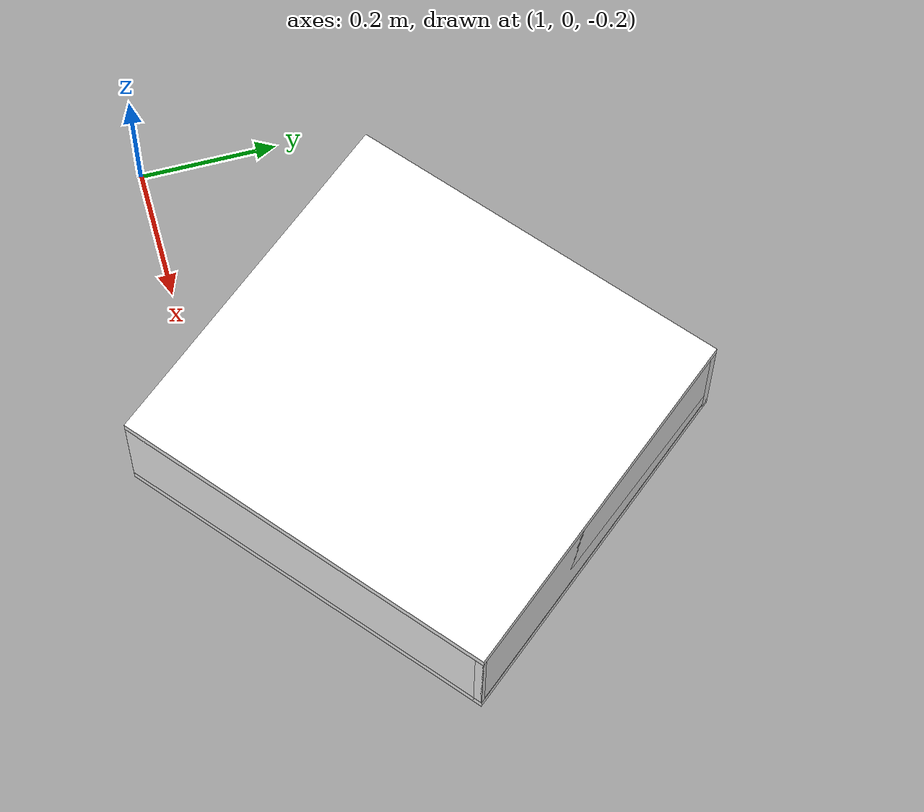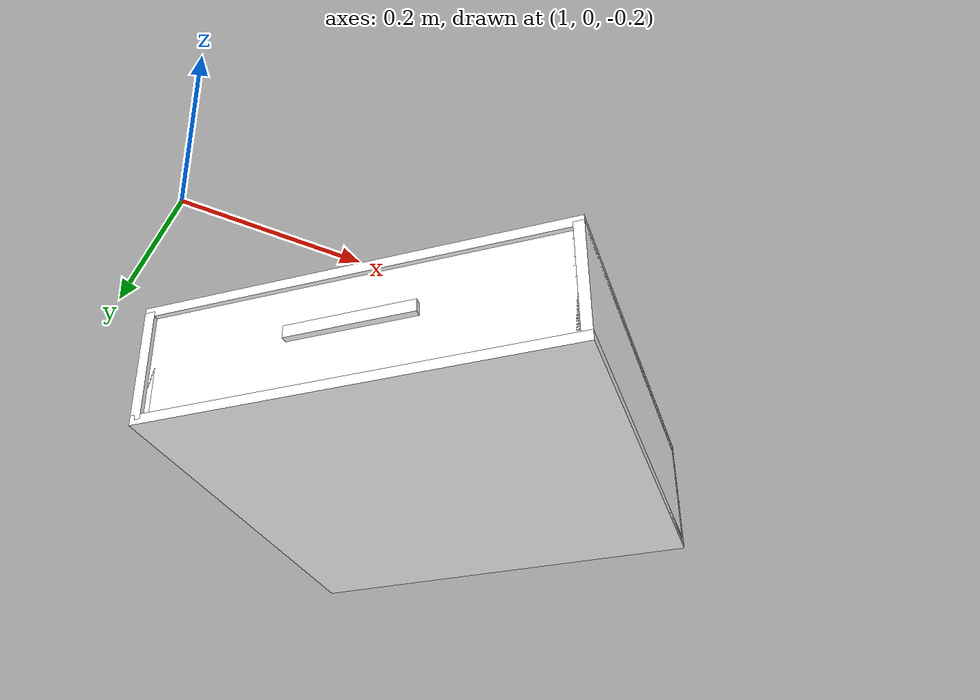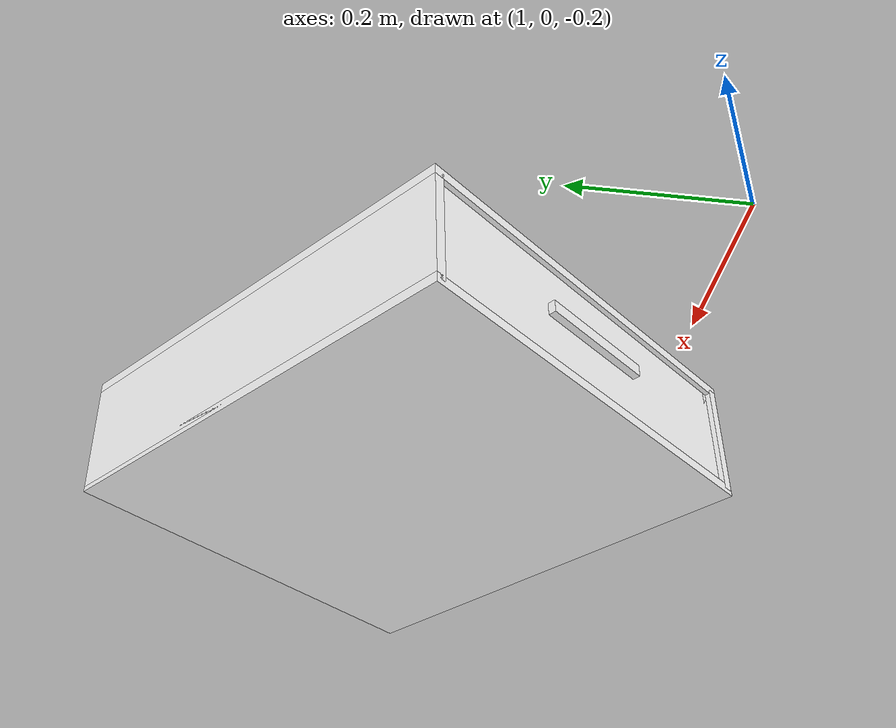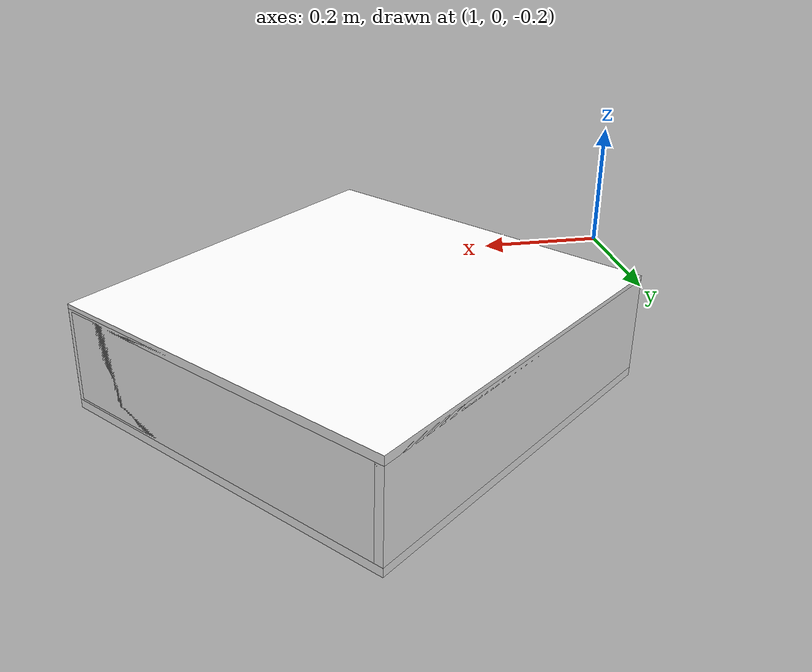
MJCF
<mujoco model="drawer">
        <compiler angle="radian" eulerseq='zxy' />
        <option gravity = "0 0 0" />
        <option>
            <flag contact = "disable"/>
        </option>
        <statistic	extent="1.0" center="0.0 0.0 0.0"/>
        <visual>
            <map fogstart="3" fogend="5" force="0.1" znear=" 0.100000 " zfar=" 12.000000 "/>
        </visual>
        <size njmax="500" nconmax="100" />
        <actuator>
            <velocity joint="drawerJ" name="viva_revolution" kv='10'></velocity>
        </actuator>
        <asset>
            <texture builtin="flat" name="objtex" height="32" width="32" rgb1="1 1 1" type="cube"></texture>
            <texture builtin="flat" name="handletex" height="32" width="32" rgb1="1 1 1" type="cube"></texture>
            <material name="geomObj" shininess="0.03" specular="0.75" texture="objtex"></material>
            <material name="geomHandle" shininess="0.03" specular="0.75" texture="handletex"></material>
        </asset>
        <worldbody>
            <body name="cabinet_bottom" pos= " 1.471894 0.295919 -0.281403 "  quat= " -0.339851 0.000000 0.000000 0.940479" >
                <inertial pos="0 0 0" mass="1" diaginertia="1 1 1" />
                <geom size= " 0.298707 0.282541 0.006825 "  type="box" material="geomObj" name="b"/>
                <body name="cabinet_left" pos= " 0.000000 -0.275716 0.077061 " >
                    <inertial pos="0 0 0" mass="1" diaginertia="1 1 1" />
                    <geom size= " 0.298707 0.006825 0.077061 "  type="box" material="geomObj" name="c" />
                </body>
                <body name="cabinet_right" pos= " 0.000000 0.275716 0.077061 " >
                    <inertial pos="0 0 0" mass="1" diaginertia="1 1 1" />
                    <geom size= " 0.298707 0.006825 0.077061 "  type="box" material="geomObj" name="d" />
                </body>
                <body name="cabinet_top" pos= " 0.000000 0.000000 0.154122 " >
                    <inertial pos="0 0 0" mass="1" diaginertia="1 1 1" />
                    <geom size= " 0.298707 0.282541 0.006825 "  type="box" material="geomObj" name="e"/>
                </body>
                <body name="cabinet_back" pos= " -0.291882 0.000000 0.077061 "  >
                    <inertial pos="0 0 0" mass="1" diaginertia="1 1 1" />
                    <geom size= " 0.006825 0.282541 0.077061 "  type="box" material="geomObj" name="f" />
                </body>
                <body name="drawer" pos= " 0.000000 0.000000 0.003412 "  >
                    <geom size= " 0.291882 0.275716 0.006825 "  type="box" material="geomObj" name="ddddfadfadsfac" />
                    <joint name="drawerJ" pos="0 0 0" axis="1 0 0" type="slide" limited="true" range= "0  0.44806046783924103 "  />
                    <inertial pos="0 0 0" mass="1" diaginertia="1 1 1" />
                    <body name="drawer_left" pos= " 0.000000 -0.268891 0.077061 " >
                        <inertial pos="0 0 0" mass="1" diaginertia="1 1 1" />
                        <geom size= " 0.291882 0.006825 0.070236 "  type="box" material="geomObj" name="ddc" />
                    </body>
                    <body name="drawer_right" pos= " 0.000000 0.268891 0.077061 " >
                        <inertial pos="0 0 0" mass="1" diaginertia="1 1 1" />
                        <geom size= " 0.291882 0.006825 0.070236 "  type="box" material="geomObj" name="dddd" />
                    </body>
                    <body name="drawer_front" pos= " 0.285057 0.000000 0.077061 " >
                        <inertial pos="0 0 0" mass="1" diaginertia="1 1 1" />
                        <geom size= " 0.006825 0.275716 0.070236 "  type="box" material="geomObj" name="eeeee"/>
                    </body>
                    <body name="drawer_back" pos= " -0.291882 0.000000 0.077061 "  >
                        <inertial pos="0 0 0" mass="1" diaginertia="1 1 1" />
                        <geom size= " 0.006825 0.275716 0.070236 "  type="box" material="geomObj" name="fffff" />
                    </body>
                    <body name="knob" pos= " 0.298707 0.000000 0.077061 " >
                        <inertial pos="0 0 0" mass="0.1" diaginertia="0.1 0.1 0.1" />
                        <geom size= " 0.004911 0.084135 0.008340 "  pos="0 0 0" type="box" material="geomHandle" name="handle"/>
                    </body>
                </body>
            </body>
            <body name="external_camera_body_0" pos="0.0 0 0.00">
                <camera euler="-1.57 1.57 0.0" fovy=" 54.280851 " name="external_camera_0" pos="0.0 0 0"></camera>
                <inertial pos= " 0.00 0.0 0.000000 " mass="1" diaginertia="1 1 1" />
                <joint name="cam_j" pos="0.0 0 0" axis = "1 0 0" type="free" />
            </body>
        </worldbody>
    </mujoco>
